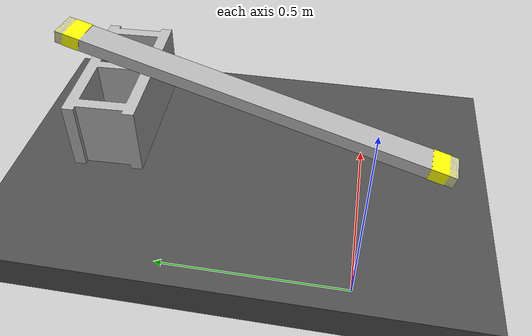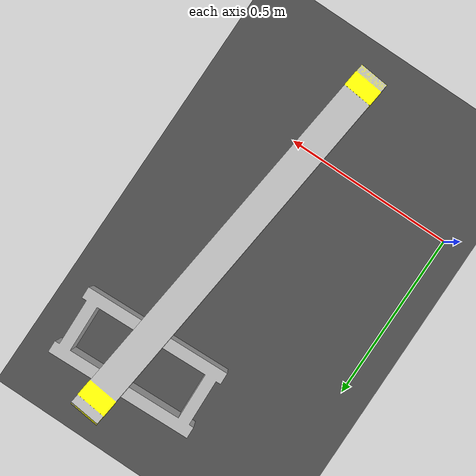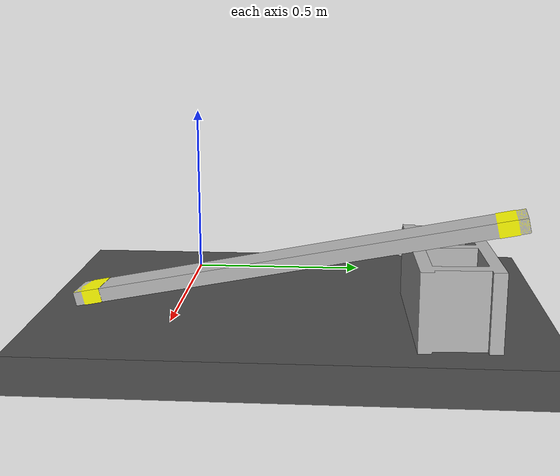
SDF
<sdf version="1.4">
 <world name="default">
  <light name="sun" type="directional">
   <pose>0 0 10 0 -0 0</pose>
   <diffuse>0.8 0.8 0.8 1</diffuse>
   <specular>0.2 0.2 0.2 1</specular>
   <attenuation>
    <range>1000</range>
    <constant>0.9</constant>
    <linear>0.01</linear>
    <quadratic>0.001</quadratic>
   </attenuation>
   <direction>-0.5 0.1 -0.9</direction>
  </light>
  <physics type="ode">
   <max_step_size>0.001</max_step_size>
   <real_time_factor>1</real_time_factor>
   <real_time_update_rate>1000</real_time_update_rate>
   <gravity>0 0 -9.8</gravity>
  </physics>
  <scene><ambient>0.4 0.4 0.4 1</ambient><background>0.7 0.7 0.7 1</background><shadows>1</shadows></scene>
  <spherical_coordinates>
   <surface_model>EARTH_WGS84</surface_model>
   <latitude_deg>0</latitude_deg>
   <longitude_deg>0</longitude_deg>
   <elevation>0</elevation>
   <heading_deg>0</heading_deg>
  </spherical_coordinates>
  <model name="cinder_block">
   <link name="link">
    <inertial>
     <pose>0 0 0.1016 0 -0 0</pose>
     <mass>5</mass>
     <inertia>
      <ixx>0.028705</ixx>
      <ixy>0</ixy>
      <iyy>0.073708</iyy>
      <ixz>0</ixz>
      <iyz>0</iyz>
      <izz>0.06908</izz>
     </inertia>
    </inertial>
    <visual name="visual">
     <geometry><mesh><uri>model://cinder_block/meshes/cinder_block.dae</uri></mesh></geometry>
    </visual>
    <collision name="left">
     <pose>0 -0.08465 0.1016 0 -0 0</pose>
     <geometry><box><size>0.43495 0.0339 0.2032</size></box></geometry>
     <surface>
      <contact><ode><max_vel>0.1</max_vel><min_depth>0.001</min_depth></ode></contact>
      <friction><ode><mu>1</mu><mu2>1</mu2></ode></friction>
     </surface>
    </collision>
    <collision name="right">
     <pose>0 0.08465 0.1016 0 -0 0</pose>
     <geometry><box><size>0.43495 0.0339 0.2032</size></box></geometry>
     <surface>
      <contact><ode><max_vel>0.1</max_vel><min_depth>0.001</min_depth></ode></contact>
      <friction><ode><mu>1</mu><mu2>1</mu2></ode></friction>
     </surface>
    </collision>
    <collision name="front">
     <pose>0.18625 0 0.1016 0 -0 0</pose>
     <geometry><box><size>0.0339 0.1354 0.203</size></box></geometry>
     <surface>
      <contact><ode><max_vel>0.1</max_vel><min_depth>0.001</min_depth></ode></contact>
      <friction><ode><mu>1</mu><mu2>1</mu2></ode></friction>
     </surface>
    </collision>
    <collision name="middle">
     <pose>0 0 0.1016 0 -0 0</pose>
     <geometry><box><size>0.0339 0.1354 0.203</size></box></geometry>
     <surface>
      <contact><ode><max_vel>0.1</max_vel><min_depth>0.001</min_depth></ode></contact>
      <friction><ode><mu>1</mu><mu2>1</mu2></ode></friction>
     </surface>
    </collision>
    <collision name="back">
     <pose>-0.18625 0 0.1016 0 -0 0</pose>
     <geometry><box><size>0.0339 0.1354 0.203</size></box></geometry>
     <surface>
      <contact><ode><max_vel>0.1</max_vel><min_depth>0.001</min_depth></ode></contact>
      <friction><ode><mu>1</mu><mu2>1</mu2></ode></friction>
     </surface>
    </collision>
    <velocity_decay><linear>0</linear><angular>0</angular></velocity_decay>
   </link>
   <pose>0.510458 0.731545 0.020659 -0.000887 0.000269 0.035354</pose>
   <static>0</static>
  </model>
  <model name="lumber_2x4x48">
   <link name="link">
    <inertial>
     <mass>1.4111</mass>
     <inertia><ixx>0.0011</ixx><ixy>0</ixy><ixz>0</ixz><iyy>0.1771</iyy><iyz>0</iyz><izz>0.1763</izz></inertia>
    </inertial>
    <collision name="collision">
     <geometry><box><size>1.2192 0.038 0.0888</size></box></geometry>
     <surface>
      <bounce><restitution_coefficient>0.01</restitution_coefficient><threshold>5</threshold></bounce>
      <friction><ode><mu>5</mu><mu2>5</mu2></ode></friction>
      <contact>
       <ode>
        <soft_cfm>0.001</soft_cfm>
        <kp>10000</kp>
        <kd>1000</kd>
        <max_vel>0.01</max_vel>
        <min_depth>0.001</min_depth>
       </ode>
      </contact>
     </surface>
    </collision>
    <visual name="visual">
     <geometry><mesh><uri>model://drc_practice_2x4/meshes/2x4x48.dae</uri></mesh></geometry>
    </visual>
    <velocity_decay><linear>0</linear><angular>0</angular></velocity_decay>
   </link>
   <pose>0.483656 0.324577 0.173444 1.60346 -0.218253 1.45616</pose>
   <static>0</static>
  </model>
  <model name="asphalt_plane">
   <static>1</static>
   <link name="link">
    <collision name="collision"><geometry><box><size>20 20 0.1</size></box></geometry></collision>
    <visual name="visual">
     <cast_shadows>0</cast_shadows>
     <geometry><box><size>20 20 0.1</size></box></geometry>
     <material>
      <script>
       <uri>model://asphalt_plane/materials/scripts</uri>
       <uri>model://asphalt_plane/materials/textures</uri>
       <name>vrc/asphalt</name>
      </script>
     </material>
    </visual>
    <velocity_decay><linear>0</linear><angular>0</angular></velocity_decay>
   </link>
   <pose>-0.0534 -0.053089 -0.02886 0 -0 0</pose>
  </model>
 </world>
</sdf>
